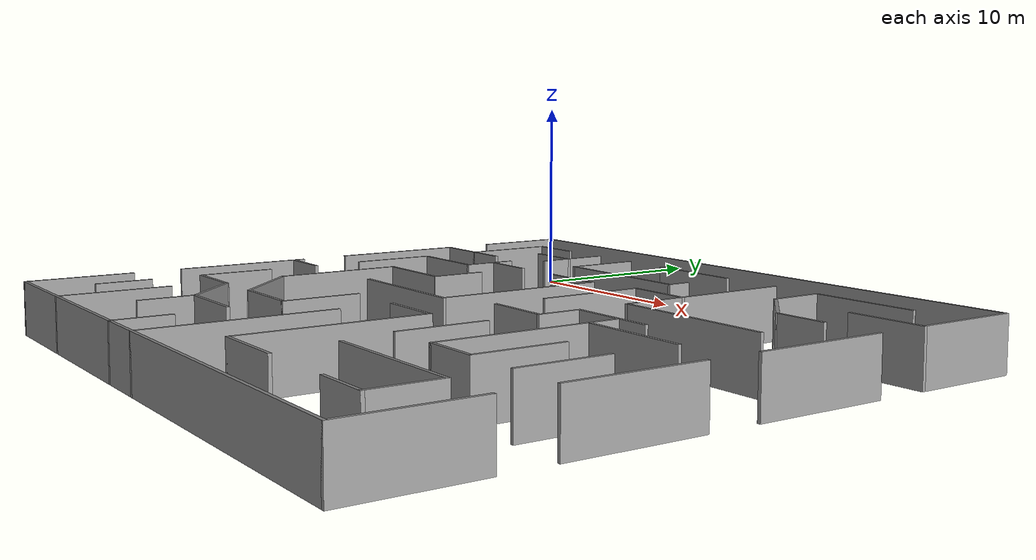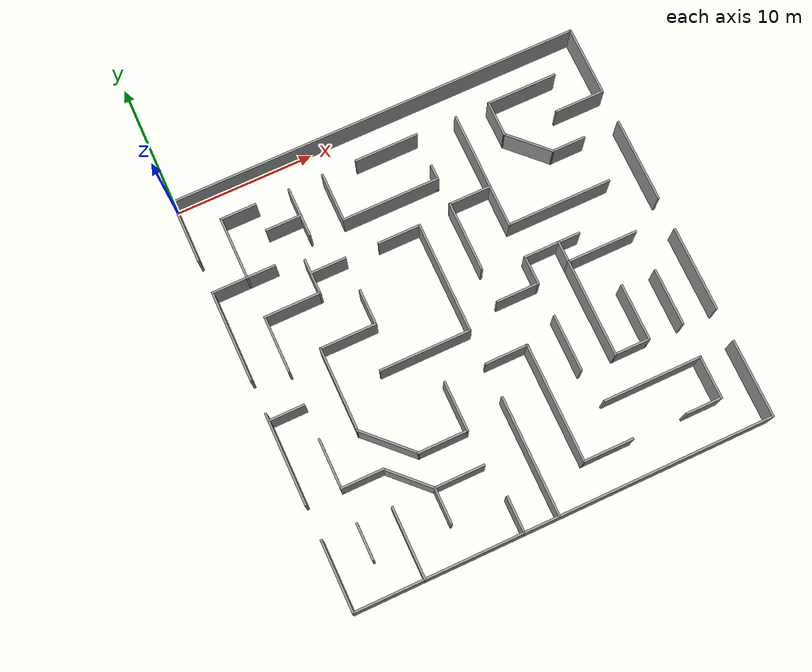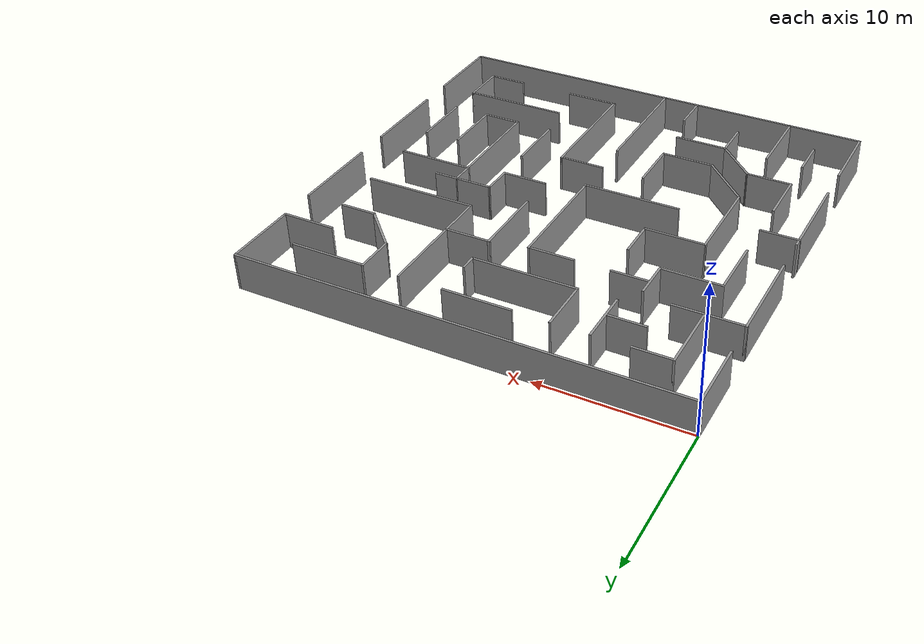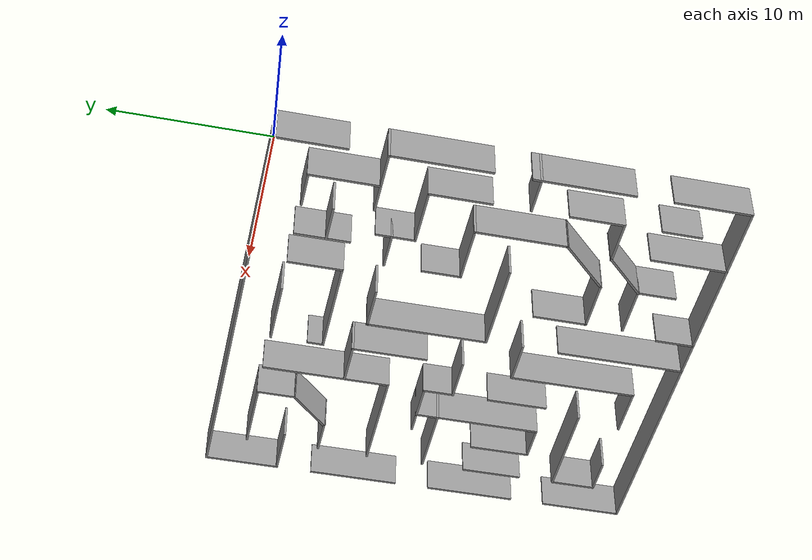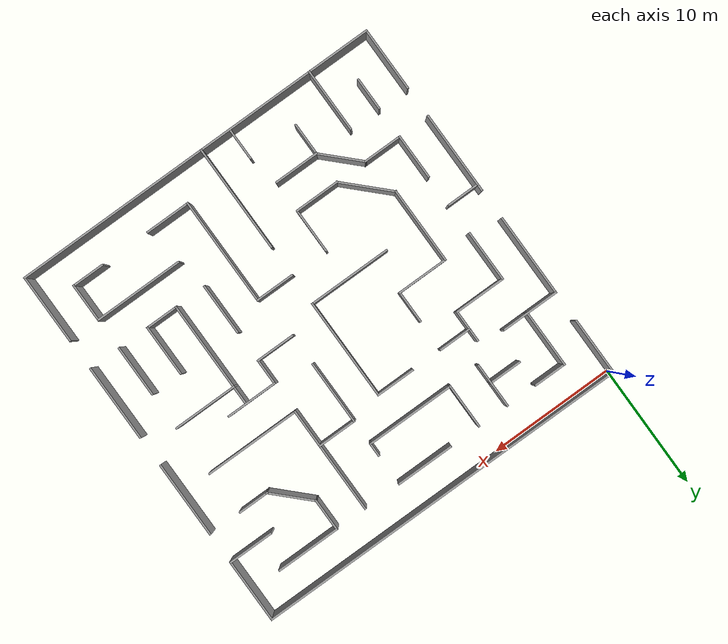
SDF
<?xml version='1.0'?>
<sdf version='1.6'>
  <model name='Untitled'>
    <pose frame=''>15 -15 0 0 -0 0</pose>
    <link name='Wall_101'>
      <collision name='Wall_101_Collision'>
        <geometry>
          <box>
            <size>2.65 0.15 2.5</size>
          </box>
        </geometry>
        <pose frame=''>0 0 1.25 0 -0 0</pose>
      </collision>
      <visual name='Wall_101_Visual'>
        <pose frame=''>0 0 1.25 0 -0 0</pose>
        <geometry>
          <box>
            <size>2.65 0.15 2.5</size>
          </box>
        </geometry>
        <material>
          <script>
            <uri>file://media/materials/scripts/gazebo.material</uri>
            <name>Gazebo/Grey</name>
          </script>
          <ambient>1 1 1 1</ambient>
        </material>
        <meta>
          <layer>0</layer>
        </meta>
      </visual>
      <pose frame=''>8.75 -7 0 0 -0 0</pose>
    </link>
    <link name='Wall_103'>
      <collision name='Wall_103_Collision'>
        <geometry>
          <box>
            <size>4.15 0.15 2.5</size>
          </box>
        </geometry>
        <pose frame=''>0 0 1.25 0 -0 0</pose>
      </collision>
      <visual name='Wall_103_Visual'>
        <pose frame=''>0 0 1.25 0 -0 0</pose>
        <geometry>
          <box>
            <size>4.15 0.15 2.5</size>
          </box>
        </geometry>
        <material>
          <script>
            <uri>file://media/materials/scripts/gazebo.material</uri>
            <name>Gazebo/Grey</name>
          </script>
          <ambient>1 1 1 1</ambient>
        </material>
        <meta>
          <layer>0</layer>
        </meta>
      </visual>
      <pose frame=''>10 -5 0 0 -0 1.5708</pose>
    </link>
    <link name='Wall_105'>
      <collision name='Wall_105_Collision'>
        <geometry>
          <box>
            <size>4.15 0.15 2.5</size>
          </box>
        </geometry>
        <pose frame=''>0 0 1.25 0 -0 0</pose>
      </collision>
      <visual name='Wall_105_Visual'>
        <pose frame=''>0 0 1.25 0 -0 0</pose>
        <geometry>
          <box>
            <size>4.15 0.15 2.5</size>
          </box>
        </geometry>
        <material>
          <script>
            <uri>file://media/materials/scripts/gazebo.material</uri>
            <name>Gazebo/Grey</name>
          </script>
          <ambient>1 1 1 1</ambient>
        </material>
        <meta>
          <layer>0</layer>
        </meta>
      </visual>
      <pose frame=''>12.5 -5 0 0 -0 -1.5708</pose>
    </link>
    <link name='Wall_107'>
      <collision name='Wall_107_Collision'>
        <geometry>
          <box>
            <size>7.15 0.15 2.5</size>
          </box>
        </geometry>
        <pose frame=''>0 0 1.25 0 -0 0</pose>
      </collision>
      <visual name='Wall_107_Visual'>
        <pose frame=''>0 0 1.25 0 -0 0</pose>
        <geometry>
          <box>
            <size>7.15 0.15 2.5</size>
          </box>
        </geometry>
        <material>
          <script>
            <uri>file://media/materials/scripts/gazebo.material</uri>
            <name>Gazebo/Grey</name>
          </script>
          <ambient>1 1 1 1</ambient>
        </material>
        <meta>
          <layer>0</layer>
        </meta>
      </visual>
      <pose frame=''>9 -9.5 0 0 -0 0</pose>
    </link>
    <link name='Wall_111'>
      <collision name='Wall_111_Collision'>
        <geometry>
          <box>
            <size>5.15 0.15 2.5</size>
          </box>
        </geometry>
        <pose frame=''>0 0 1.25 0 -0 0</pose>
      </collision>
      <visual name='Wall_111_Visual'>
        <pose frame=''>0 0 1.25 0 -0 0</pose>
        <geometry>
          <box>
            <size>5.15 0.15 2.5</size>
          </box>
        </geometry>
        <material>
          <script>
            <uri>file://media/materials/scripts/gazebo.material</uri>
            <name>Gazebo/Grey</name>
          </script>
          <ambient>1 1 1 1</ambient>
        </material>
        <meta>
          <layer>0</layer>
        </meta>
      </visual>
      <pose frame=''>10 0 0 0 -0 0</pose>
    </link>
    <link name='Wall_113'>
      <collision name='Wall_113_Collision'>
        <geometry>
          <box>
            <size>5.15 0.15 2.5</size>
          </box>
        </geometry>
        <pose frame=''>0 0 1.25 0 -0 0</pose>
      </collision>
      <visual name='Wall_113_Visual'>
        <pose frame=''>0 0 1.25 0 -0 0</pose>
        <geometry>
          <box>
            <size>5.15 0.15 2.5</size>
          </box>
        </geometry>
        <material>
          <script>
            <uri>file://media/materials/scripts/gazebo.material</uri>
            <name>Gazebo/Grey</name>
          </script>
          <ambient>1 1 1 1</ambient>
        </material>
        <meta>
          <layer>0</layer>
        </meta>
      </visual>
      <pose frame=''>10 12.5 0 0 -0 0</pose>
    </link>
    <link name='Wall_115'>
      <collision name='Wall_115_Collision'>
        <geometry>
          <box>
            <size>3.65 0.15 2.5</size>
          </box>
        </geometry>
        <pose frame=''>0 0 1.25 0 -0 0</pose>
      </collision>
      <visual name='Wall_115_Visual'>
        <pose frame=''>0 0 1.25 0 -0 0</pose>
        <geometry>
          <box>
            <size>3.65 0.15 2.5</size>
          </box>
        </geometry>
        <material>
          <script>
            <uri>file://media/materials/scripts/gazebo.material</uri>
            <name>Gazebo/Grey</name>
          </script>
          <ambient>1 1 1 1</ambient>
        </material>
        <meta>
          <layer>0</layer>
        </meta>
      </visual>
      <pose frame=''>13.25 10 0 0 -0 3.14159</pose>
    </link>
    <link name='Wall_117'>
      <collision name='Wall_117_Collision'>
        <geometry>
          <box>
            <size>2.65 0.15 2.5</size>
          </box>
        </geometry>
        <pose frame=''>0 0 1.25 0 -0 0</pose>
      </collision>
      <visual name='Wall_117_Visual'>
        <pose frame=''>0 0 1.25 0 -0 0</pose>
        <geometry>
          <box>
            <size>2.65 0.15 2.5</size>
          </box>
        </geometry>
        <material>
          <script>
            <uri>file://media/materials/scripts/gazebo.material</uri>
            <name>Gazebo/Grey</name>
          </script>
          <ambient>1 1 1 1</ambient>
        </material>
        <meta>
          <layer>0</layer>
        </meta>
      </visual>
      <pose frame=''>-13.75 -1.5 0 0 -0 0</pose>
    </link>
    <link name='Wall_119'>
      <collision name='Wall_119_Collision'>
        <geometry>
          <box>
            <size>6.15 0.15 2.5</size>
          </box>
        </geometry>
        <pose frame=''>0 0 1.25 0 -0 0</pose>
      </collision>
      <visual name='Wall_119_Visual'>
        <pose frame=''>0 0 1.25 0 -0 0</pose>
        <geometry>
          <box>
            <size>6.15 0.15 2.5</size>
          </box>
        </geometry>
        <material>
          <script>
            <uri>file://media/materials/scripts/gazebo.material</uri>
            <name>Gazebo/Grey</name>
          </script>
          <ambient>1 1 1 1</ambient>
        </material>
        <meta>
          <layer>0</layer>
        </meta>
      </visual>
      <pose frame=''>-10 -1.5 0 0 -0 -1.5708</pose>
    </link>
    <link name='Wall_121'>
      <collision name='Wall_121_Collision'>
        <geometry>
          <box>
            <size>4.15 0.15 2.5</size>
          </box>
        </geometry>
        <pose frame=''>0 0 1.25 0 -0 0</pose>
      </collision>
      <visual name='Wall_121_Visual'>
        <pose frame=''>0 0 1.25 0 -0 0</pose>
        <geometry>
          <box>
            <size>4.15 0.15 2.5</size>
          </box>
        </geometry>
        <material>
          <script>
            <uri>file://media/materials/scripts/gazebo.material</uri>
            <name>Gazebo/Grey</name>
          </script>
          <ambient>1 1 1 1</ambient>
        </material>
        <meta>
          <layer>0</layer>
        </meta>
      </visual>
      <pose frame=''>-8 1.5 0 0 -0 0</pose>
    </link>
    <link name='Wall_123'>
      <collision name='Wall_123_Collision'>
        <geometry>
          <box>
            <size>2.65 0.15 2.5</size>
          </box>
        </geometry>
        <pose frame=''>0 0 1.25 0 -0 0</pose>
      </collision>
      <visual name='Wall_123_Visual'>
        <pose frame=''>0 0 1.25 0 -0 0</pose>
        <geometry>
          <box>
            <size>2.65 0.15 2.5</size>
          </box>
        </geometry>
        <material>
          <script>
            <uri>file://media/materials/scripts/gazebo.material</uri>
            <name>Gazebo/Grey</name>
          </script>
          <ambient>1 1 1 1</ambient>
        </material>
        <meta>
          <layer>0</layer>
        </meta>
      </visual>
      <pose frame=''>-6 2.75 0 0 -0 1.5708</pose>
    </link>
    <link name='Wall_125'>
      <collision name='Wall_125_Collision'>
        <geometry>
          <box>
            <size>4.39264 0.15 2.5</size>
          </box>
        </geometry>
        <pose frame=''>0 0 1.25 0 -0 0</pose>
      </collision>
      <visual name='Wall_125_Visual'>
        <pose frame=''>0 0 1.25 0 -0 0</pose>
        <geometry>
          <box>
            <size>4.39264 0.15 2.5</size>
          </box>
        </geometry>
        <material>
          <script>
            <uri>file://media/materials/scripts/gazebo.material</uri>
            <name>Gazebo/Grey</name>
          </script>
          <ambient>1 1 1 1</ambient>
        </material>
        <meta>
          <layer>0</layer>
        </meta>
      </visual>
      <pose frame=''>-8.5 -6 0 0 -0 -0.785398</pose>
    </link>
    <link name='Wall_127'>
      <collision name='Wall_127_Collision'>
        <geometry>
          <box>
            <size>3.65 0.15 2.5</size>
          </box>
        </geometry>
        <pose frame=''>0 0 1.25 0 -0 0</pose>
      </collision>
      <visual name='Wall_127_Visual'>
        <pose frame=''>0 0 1.25 0 -0 0</pose>
        <geometry>
          <box>
            <size>3.65 0.15 2.5</size>
          </box>
        </geometry>
        <material>
          <script>
            <uri>file://media/materials/scripts/gazebo.material</uri>
            <name>Gazebo/Grey</name>
          </script>
          <ambient>1 1 1 1</ambient>
        </material>
        <meta>
          <layer>0</layer>
        </meta>
      </visual>
      <pose frame=''>-5.25 -7.5 0 0 -0 0</pose>
    </link>
    <link name='Wall_128'>
      <collision name='Wall_128_Collision'>
        <geometry>
          <box>
            <size>3.65 0.15 2.5</size>
          </box>
        </geometry>
        <pose frame=''>0 0 1.25 0 -0 0</pose>
      </collision>
      <visual name='Wall_128_Visual'>
        <pose frame=''>0 0 1.25 0 -0 0</pose>
        <geometry>
          <box>
            <size>3.65 0.15 2.5</size>
          </box>
        </geometry>
        <material>
          <script>
            <uri>file://media/materials/scripts/gazebo.material</uri>
            <name>Gazebo/Grey</name>
          </script>
          <ambient>1 1 1 1</ambient>
        </material>
        <meta>
          <layer>0</layer>
        </meta>
      </visual>
      <pose frame=''>-3.5 -5.75 0 0 -0 1.5708</pose>
    </link>
    <link name='Wall_132'>
      <collision name='Wall_132_Collision'>
        <geometry>
          <box>
            <size>3.65 0.15 2.5</size>
          </box>
        </geometry>
        <pose frame=''>0 0 1.25 0 -0 0</pose>
      </collision>
      <visual name='Wall_132_Visual'>
        <pose frame=''>0 0 1.25 0 -0 0</pose>
        <geometry>
          <box>
            <size>3.65 0.15 2.5</size>
          </box>
        </geometry>
        <material>
          <script>
            <uri>file://media/materials/scripts/gazebo.material</uri>
            <name>Gazebo/Grey</name>
          </script>
          <ambient>1 1 1 1</ambient>
        </material>
        <meta>
          <layer>0</layer>
        </meta>
      </visual>
      <pose frame=''>-12.5 -5.75 0 0 -0 -1.5708</pose>
    </link>
    <link name='Wall_134'>
      <collision name='Wall_134_Collision'>
        <geometry>
          <box>
            <size>3.15 0.15 2.5</size>
          </box>
        </geometry>
        <pose frame=''>0 0 1.25 0 -0 0</pose>
      </collision>
      <visual name='Wall_134_Visual'>
        <pose frame=''>0 0 1.25 0 -0 0</pose>
        <geometry>
          <box>
            <size>3.15 0.15 2.5</size>
          </box>
        </geometry>
        <material>
          <script>
            <uri>file://media/materials/scripts/gazebo.material</uri>
            <name>Gazebo/Grey</name>
          </script>
          <ambient>1 1 1 1</ambient>
        </material>
        <meta>
          <layer>0</layer>
        </meta>
      </visual>
      <pose frame=''>-11 -7.5 0 0 -0 0</pose>
    </link>
    <link name='Wall_135'>
      <collision name='Wall_135_Collision'>
        <geometry>
          <box>
            <size>3.68553 0.15 2.5</size>
          </box>
        </geometry>
        <pose frame=''>0 0 1.25 0 -0 0</pose>
      </collision>
      <visual name='Wall_135_Visual'>
        <pose frame=''>0 0 1.25 0 -0 0</pose>
        <geometry>
          <box>
            <size>3.68553 0.15 2.5</size>
          </box>
        </geometry>
        <material>
          <script>
            <uri>file://media/materials/scripts/gazebo.material</uri>
            <name>Gazebo/Grey</name>
          </script>
          <ambient>1 1 1 1</ambient>
        </material>
        <meta>
          <layer>0</layer>
        </meta>
      </visual>
      <pose frame=''>-8.25 -8.75 0 0 -0 -0.785398</pose>
    </link>
    <link name='Wall_136'>
      <collision name='Wall_136_Collision'>
        <geometry>
          <box>
            <size>3.65 0.15 2.5</size>
          </box>
        </geometry>
        <pose frame=''>0 0 1.25 0 -0 0</pose>
      </collision>
      <visual name='Wall_136_Visual'>
        <pose frame=''>0 0 1.25 0 -0 0</pose>
        <geometry>
          <box>
            <size>3.65 0.15 2.5</size>
          </box>
        </geometry>
        <material>
          <script>
            <uri>file://media/materials/scripts/gazebo.material</uri>
            <name>Gazebo/Grey</name>
          </script>
          <ambient>1 1 1 1</ambient>
        </material>
        <meta>
          <layer>0</layer>
        </meta>
      </visual>
      <pose frame=''>-5.25 -10 0 0 -0 0</pose>
    </link>
    <link name='Wall_138'>
      <collision name='Wall_138_Collision'>
        <geometry>
          <box>
            <size>2.65 0.15 2.5</size>
          </box>
        </geometry>
        <pose frame=''>0 0 1.25 0 -0 0</pose>
      </collision>
      <visual name='Wall_138_Visual'>
        <pose frame=''>0 0 1.25 0 -0 0</pose>
        <geometry>
          <box>
            <size>2.65 0.15 2.5</size>
          </box>
        </geometry>
        <material>
          <script>
            <uri>file://media/materials/scripts/gazebo.material</uri>
            <name>Gazebo/Grey</name>
          </script>
          <ambient>1 1 1 1</ambient>
        </material>
        <meta>
          <layer>0</layer>
        </meta>
      </visual>
      <pose frame=''>-7 -11.25 0 0 -0 -1.5708</pose>
    </link>
    <link name='Wall_140'>
      <collision name='Wall_140_Collision'>
        <geometry>
          <box>
            <size>2.65 0.15 2.5</size>
          </box>
        </geometry>
        <pose frame=''>0 0 1.25 0 -0 0</pose>
      </collision>
      <visual name='Wall_140_Visual'>
        <pose frame=''>0 0 1.25 0 -0 0</pose>
        <geometry>
          <box>
            <size>2.65 0.15 2.5</size>
          </box>
        </geometry>
        <material>
          <script>
            <uri>file://media/materials/scripts/gazebo.material</uri>
            <name>Gazebo/Grey</name>
          </script>
          <ambient>1 1 1 1</ambient>
        </material>
        <meta>
          <layer>0</layer>
        </meta>
      </visual>
      <pose frame=''>-12.5 -11.25 0 0 -0 1.5708</pose>
    </link>
    <link name='Wall_142'>
      <collision name='Wall_142_Collision'>
        <geometry>
          <box>
            <size>5.15 0.15 2.5</size>
          </box>
        </geometry>
        <pose frame=''>0 0 1.25 0 -0 0</pose>
      </collision>
      <visual name='Wall_142_Visual'>
        <pose frame=''>0 0 1.25 0 -0 0</pose>
        <geometry>
          <box>
            <size>5.15 0.15 2.5</size>
          </box>
        </geometry>
        <material>
          <script>
            <uri>file://media/materials/scripts/gazebo.material</uri>
            <name>Gazebo/Grey</name>
          </script>
          <ambient>1 1 1 1</ambient>
        </material>
        <meta>
          <layer>0</layer>
        </meta>
      </visual>
      <pose frame=''>-10 -12.5 0 0 -0 -1.5708</pose>
    </link>
    <link name='Wall_144'>
      <collision name='Wall_144_Collision'>
        <geometry>
          <box>
            <size>2.65 0.15 2.5</size>
          </box>
        </geometry>
        <pose frame=''>0 0 1.25 0 -0 0</pose>
      </collision>
      <visual name='Wall_144_Visual'>
        <pose frame=''>0 0 1.25 0 -0 0</pose>
        <geometry>
          <box>
            <size>2.65 0.15 2.5</size>
          </box>
        </geometry>
        <material>
          <script>
            <uri>file://media/materials/scripts/gazebo.material</uri>
            <name>Gazebo/Grey</name>
          </script>
          <ambient>1 1 1 1</ambient>
        </material>
        <meta>
          <layer>0</layer>
        </meta>
      </visual>
      <pose frame=''>-3 -13.75 0 0 -0 1.5708</pose>
    </link>
    <link name='Wall_146'>
      <collision name='Wall_146_Collision'>
        <geometry>
          <box>
            <size>3.15 0.15 2.5</size>
          </box>
        </geometry>
        <pose frame=''>0 0 1.25 0 -0 0</pose>
      </collision>
      <visual name='Wall_146_Visual'>
        <pose frame=''>0 0 1.25 0 -0 0</pose>
        <geometry>
          <box>
            <size>3.15 0.15 2.5</size>
          </box>
        </geometry>
        <material>
          <script>
            <uri>file://media/materials/scripts/gazebo.material</uri>
            <name>Gazebo/Grey</name>
          </script>
          <ambient>1 1 1 1</ambient>
        </material>
        <meta>
          <layer>0</layer>
        </meta>
      </visual>
      <pose frame=''>1 -4 0 0 -0 0</pose>
    </link>
    <link name='Wall_148'>
      <collision name='Wall_148_Collision'>
        <geometry>
          <box>
            <size>4.15 0.15 2.5</size>
          </box>
        </geometry>
        <pose frame=''>0 0 1.25 0 -0 0</pose>
      </collision>
      <visual name='Wall_148_Visual'>
        <pose frame=''>0 0 1.25 0 -0 0</pose>
        <geometry>
          <box>
            <size>4.15 0.15 2.5</size>
          </box>
        </geometry>
        <material>
          <script>
            <uri>file://media/materials/scripts/gazebo.material</uri>
            <name>Gazebo/Grey</name>
          </script>
          <ambient>1 1 1 1</ambient>
        </material>
        <meta>
          <layer>0</layer>
        </meta>
      </visual>
      <pose frame=''>5 -5 0 0 -0 -1.5708</pose>
    </link>
    <link name='Wall_150'>
      <collision name='Wall_150_Collision'>
        <geometry>
          <box>
            <size>8.65 0.15 2.5</size>
          </box>
        </geometry>
        <pose frame=''>0 0 1.25 0 -0 0</pose>
      </collision>
      <visual name='Wall_150_Visual'>
        <pose frame=''>0 0 1.25 0 -0 0</pose>
        <geometry>
          <box>
            <size>8.65 0.15 2.5</size>
          </box>
        </geometry>
        <material>
          <script>
            <uri>file://media/materials/scripts/gazebo.material</uri>
            <name>Gazebo/Grey</name>
          </script>
          <ambient>1 1 1 1</ambient>
        </material>
        <meta>
          <layer>0</layer>
        </meta>
      </visual>
      <pose frame=''>2.5 -8.25 0 0 -0 -1.5708</pose>
    </link>
    <link name='Wall_151'>
      <collision name='Wall_151_Collision'>
        <geometry>
          <box>
            <size>3.65 0.15 2.5</size>
          </box>
        </geometry>
        <pose frame=''>0 0 1.25 0 -0 0</pose>
      </collision>
      <visual name='Wall_151_Visual'>
        <pose frame=''>0 0 1.25 0 -0 0</pose>
        <geometry>
          <box>
            <size>3.65 0.15 2.5</size>
          </box>
        </geometry>
        <material>
          <script>
            <uri>file://media/materials/scripts/gazebo.material</uri>
            <name>Gazebo/Grey</name>
          </script>
          <ambient>1 1 1 1</ambient>
        </material>
        <meta>
          <layer>0</layer>
        </meta>
      </visual>
      <pose frame=''>4.25 -12.5 0 0 -0 0</pose>
    </link>
    <link name='Wall_153'>
      <collision name='Wall_153_Collision'>
        <geometry>
          <box>
            <size>3.65 0.15 2.5</size>
          </box>
        </geometry>
        <pose frame=''>0 0 1.25 0 -0 0</pose>
      </collision>
      <visual name='Wall_153_Visual'>
        <pose frame=''>0 0 1.25 0 -0 0</pose>
        <geometry>
          <box>
            <size>3.65 0.15 2.5</size>
          </box>
        </geometry>
        <material>
          <script>
            <uri>file://media/materials/scripts/gazebo.material</uri>
            <name>Gazebo/Grey</name>
          </script>
          <ambient>1 1 1 1</ambient>
        </material>
        <meta>
          <layer>0</layer>
        </meta>
      </visual>
      <pose frame=''>-7.5 10.75 0 0 -0 -1.5708</pose>
    </link>
    <link name='Wall_155'>
      <collision name='Wall_155_Collision'>
        <geometry>
          <box>
            <size>3.65 0.15 2.5</size>
          </box>
        </geometry>
        <pose frame=''>0 0 1.25 0 -0 0</pose>
      </collision>
      <visual name='Wall_155_Visual'>
        <pose frame=''>0 0 1.25 0 -0 0</pose>
        <geometry>
          <box>
            <size>3.65 0.15 2.5</size>
          </box>
        </geometry>
        <material>
          <script>
            <uri>file://media/materials/scripts/gazebo.material</uri>
            <name>Gazebo/Grey</name>
          </script>
          <ambient>1 1 1 1</ambient>
        </material>
        <meta>
          <layer>0</layer>
        </meta>
      </visual>
      <pose frame=''>-5 10.75 0 0 -0 -1.5708</pose>
    </link>
    <link name='Wall_157'>
      <collision name='Wall_157_Collision'>
        <geometry>
          <box>
            <size>2.65 0.15 2.5</size>
          </box>
        </geometry>
        <pose frame=''>0 0 1.25 0 -0 0</pose>
      </collision>
      <visual name='Wall_157_Visual'>
        <pose frame=''>0 0 1.25 0 -0 0</pose>
        <geometry>
          <box>
            <size>2.65 0.15 2.5</size>
          </box>
        </geometry>
        <material>
          <script>
            <uri>file://media/materials/scripts/gazebo.material</uri>
            <name>Gazebo/Grey</name>
          </script>
          <ambient>1 1 1 1</ambient>
        </material>
        <meta>
          <layer>0</layer>
        </meta>
      </visual>
      <pose frame=''>-7.25 6.5 0 0 -0 0</pose>
    </link>
    <link name='Wall_159'>
      <collision name='Wall_159_Collision'>
        <geometry>
          <box>
            <size>3.15 0.15 2.5</size>
          </box>
        </geometry>
        <pose frame=''>0 0 1.25 0 -0 0</pose>
      </collision>
      <visual name='Wall_159_Visual'>
        <pose frame=''>0 0 1.25 0 -0 0</pose>
        <geometry>
          <box>
            <size>3.15 0.15 2.5</size>
          </box>
        </geometry>
        <material>
          <script>
            <uri>file://media/materials/scripts/gazebo.material</uri>
            <name>Gazebo/Grey</name>
          </script>
          <ambient>1 1 1 1</ambient>
        </material>
        <meta>
          <layer>0</layer>
        </meta>
      </visual>
      <pose frame=''>-2 6.5 0 0 -0 3.14159</pose>
    </link>
    <link name='Wall_161'>
      <collision name='Wall_161_Collision'>
        <geometry>
          <box>
            <size>7.15 0.15 2.5</size>
          </box>
        </geometry>
        <pose frame=''>0 0 1.25 0 -0 0</pose>
      </collision>
      <visual name='Wall_161_Visual'>
        <pose frame=''>0 0 1.25 0 -0 0</pose>
        <geometry>
          <box>
            <size>7.15 0.15 2.5</size>
          </box>
        </geometry>
        <material>
          <script>
            <uri>file://media/materials/scripts/gazebo.material</uri>
            <name>Gazebo/Grey</name>
          </script>
          <ambient>1 1 1 1</ambient>
        </material>
        <meta>
          <layer>0</layer>
        </meta>
      </visual>
      <pose frame=''>-1.5 9 0 0 -0 0</pose>
    </link>
    <link name='Wall_163'>
      <collision name='Wall_163_Collision'>
        <geometry>
          <box>
            <size>1.15 0.15 2.5</size>
          </box>
        </geometry>
        <pose frame=''>0 0 1.25 0 -0 0</pose>
      </collision>
      <visual name='Wall_163_Visual'>
        <pose frame=''>0 0 1.25 0 -0 0</pose>
        <geometry>
          <box>
            <size>1.15 0.15 2.5</size>
          </box>
        </geometry>
        <material>
          <script>
            <uri>file://media/materials/scripts/gazebo.material</uri>
            <name>Gazebo/Grey</name>
          </script>
          <ambient>1 1 1 1</ambient>
        </material>
        <meta>
          <layer>0</layer>
        </meta>
      </visual>
      <pose frame=''>2 9.5 0 0 -0 1.5708</pose>
    </link>
    <link name='Wall_165'>
      <collision name='Wall_165_Collision'>
        <geometry>
          <box>
            <size>5.15 0.15 2.5</size>
          </box>
        </geometry>
        <pose frame=''>0 0 1.25 0 -0 0</pose>
      </collision>
      <visual name='Wall_165_Visual'>
        <pose frame=''>0 0 1.25 0 -0 0</pose>
        <geometry>
          <box>
            <size>5.15 0.15 2.5</size>
          </box>
        </geometry>
        <material>
          <script>
            <uri>file://media/materials/scripts/gazebo.material</uri>
            <name>Gazebo/Grey</name>
          </script>
          <ambient>1 1 1 1</ambient>
        </material>
        <meta>
          <layer>0</layer>
        </meta>
      </visual>
      <pose frame=''>2 4.5 0 0 -0 -1.5708</pose>
    </link>
    <link name='Wall_167'>
      <collision name='Wall_167_Collision'>
        <geometry>
          <box>
            <size>2.65 0.15 2.5</size>
          </box>
        </geometry>
        <pose frame=''>0 0 1.25 0 -0 0</pose>
      </collision>
      <visual name='Wall_167_Visual'>
        <pose frame=''>0 0 1.25 0 -0 0</pose>
        <geometry>
          <box>
            <size>2.65 0.15 2.5</size>
          </box>
        </geometry>
        <material>
          <script>
            <uri>file://media/materials/scripts/gazebo.material</uri>
            <name>Gazebo/Grey</name>
          </script>
          <ambient>1 1 1 1</ambient>
        </material>
        <meta>
          <layer>0</layer>
        </meta>
      </visual>
      <pose frame=''>7.5 11.25 0 0 -0 1.5708</pose>
    </link>
    <link name='Wall_169'>
      <collision name='Wall_169_Collision'>
        <geometry>
          <box>
            <size>8.65 0.15 2.5</size>
          </box>
        </geometry>
        <pose frame=''>0 0 1.25 0 -0 0</pose>
      </collision>
      <visual name='Wall_169_Visual'>
        <pose frame=''>0 0 1.25 0 -0 0</pose>
        <geometry>
          <box>
            <size>8.65 0.15 2.5</size>
          </box>
        </geometry>
        <material>
          <script>
            <uri>file://media/materials/scripts/gazebo.material</uri>
            <name>Gazebo/Grey</name>
          </script>
          <ambient>1 1 1 1</ambient>
        </material>
        <meta>
          <layer>0</layer>
        </meta>
      </visual>
      <pose frame=''>-0.5 -10.75 0 0 -0 -1.5708</pose>
    </link>
    <link name='Wall_171'>
      <collision name='Wall_171_Collision'>
        <geometry>
          <box>
            <size>3.15 0.15 2.5</size>
          </box>
        </geometry>
        <pose frame=''>0 0 1.25 0 -0 0</pose>
      </collision>
      <visual name='Wall_171_Visual'>
        <pose frame=''>0 0 1.25 0 -0 0</pose>
        <geometry>
          <box>
            <size>3.15 0.15 2.5</size>
          </box>
        </geometry>
        <material>
          <script>
            <uri>file://media/materials/scripts/gazebo.material</uri>
            <name>Gazebo/Grey</name>
          </script>
          <ambient>1 1 1 1</ambient>
        </material>
        <meta>
          <layer>0</layer>
        </meta>
      </visual>
      <pose frame=''>12.5 -11 0 0 -0 -1.5708</pose>
    </link>
    <link name='Wall_172'>
      <collision name='Wall_172_Collision'>
        <geometry>
          <box>
            <size>2.65 0.15 2.5</size>
          </box>
        </geometry>
        <pose frame=''>0 0 1.25 0 -0 0</pose>
      </collision>
      <visual name='Wall_172_Visual'>
        <pose frame=''>0 0 1.25 0 -0 0</pose>
        <geometry>
          <box>
            <size>2.65 0.15 2.5</size>
          </box>
        </geometry>
        <material>
          <script>
            <uri>file://media/materials/scripts/gazebo.material</uri>
            <name>Gazebo/Grey</name>
          </script>
          <ambient>1 1 1 1</ambient>
        </material>
        <meta>
          <layer>0</layer>
        </meta>
      </visual>
      <pose frame=''>11.25 -12.5 0 0 -0 3.14159</pose>
    </link>
    <link name='Wall_31'>
      <collision name='Wall_31_Collision'>
        <geometry>
          <box>
            <size>30.15 0.15 2.5</size>
          </box>
        </geometry>
        <pose frame=''>0 0 1.25 0 -0 0</pose>
      </collision>
      <visual name='Wall_31_Visual'>
        <pose frame=''>0 0 1.25 0 -0 0</pose>
        <geometry>
          <box>
            <size>30.15 0.15 2.5</size>
          </box>
        </geometry>
        <material>
          <script>
            <uri>file://media/materials/scripts/gazebo.material</uri>
            <name>Gazebo/Grey</name>
          </script>
          <ambient>1 1 1 1</ambient>
        </material>
        <meta>
          <layer>0</layer>
        </meta>
      </visual>
      <pose frame=''>-0 15 0 0 -0 0</pose>
    </link>
    <link name='Wall_35'>
      <collision name='Wall_35_Collision'>
        <geometry>
          <box>
            <size>30.15 0.15 2.5</size>
          </box>
        </geometry>
        <pose frame=''>0 0 1.25 0 -0 0</pose>
      </collision>
      <visual name='Wall_35_Visual'>
        <pose frame=''>0 0 1.25 0 -0 0</pose>
        <geometry>
          <box>
            <size>30.15 0.15 2.5</size>
          </box>
        </geometry>
        <material>
          <script>
            <uri>file://media/materials/scripts/gazebo.material</uri>
            <name>Gazebo/Grey</name>
          </script>
          <ambient>1 1 1 1</ambient>
        </material>
        <meta>
          <layer>0</layer>
        </meta>
      </visual>
      <pose frame=''>-0 -15 0 0 -0 0</pose>
    </link>
    <link name='Wall_37'>
      <collision name='Wall_37_Collision'>
        <geometry>
          <box>
            <size>4.65 0.15 2.5</size>
          </box>
        </geometry>
        <pose frame=''>0 0 1.25 0 -0 0</pose>
      </collision>
      <visual name='Wall_37_Visual'>
        <pose frame=''>0 0 1.25 0 -0 0</pose>
        <geometry>
          <box>
            <size>4.65 0.15 2.5</size>
          </box>
        </geometry>
        <material>
          <script>
            <uri>file://media/materials/scripts/gazebo.material</uri>
            <name>Gazebo/Grey</name>
          </script>
          <ambient>1 1 1 1</ambient>
        </material>
        <meta>
          <layer>0</layer>
        </meta>
      </visual>
      <pose frame=''>-12.75 8 0 0 -0 0</pose>
    </link>
    <link name='Wall_39'>
      <collision name='Wall_39_Collision'>
        <geometry>
          <box>
            <size>4.65 0.15 2.5</size>
          </box>
        </geometry>
        <pose frame=''>0 0 1.25 0 -0 0</pose>
      </collision>
      <visual name='Wall_39_Visual'>
        <pose frame=''>0 0 1.25 0 -0 0</pose>
        <geometry>
          <box>
            <size>4.65 0.15 2.5</size>
          </box>
        </geometry>
        <material>
          <script>
            <uri>file://media/materials/scripts/gazebo.material</uri>
            <name>Gazebo/Grey</name>
          </script>
          <ambient>1 1 1 1</ambient>
        </material>
        <meta>
          <layer>0</layer>
        </meta>
      </visual>
      <pose frame=''>-12.5 10.25 0 0 -0 1.5708</pose>
    </link>
    <link name='Wall_41'>
      <collision name='Wall_41_Collision'>
        <geometry>
          <box>
            <size>2.65 0.15 2.5</size>
          </box>
        </geometry>
        <pose frame=''>0 0 1.25 0 -0 0</pose>
      </collision>
      <visual name='Wall_41_Visual'>
        <pose frame=''>0 0 1.25 0 -0 0</pose>
        <geometry>
          <box>
            <size>2.65 0.15 2.5</size>
          </box>
        </geometry>
        <material>
          <script>
            <uri>file://media/materials/scripts/gazebo.material</uri>
            <name>Gazebo/Grey</name>
          </script>
          <ambient>1 1 1 1</ambient>
        </material>
        <meta>
          <layer>0</layer>
        </meta>
      </visual>
      <pose frame=''>-11.25 12.5 0 0 -0 0</pose>
    </link>
    <link name='Wall_43'>
      <collision name='Wall_43_Collision'>
        <geometry>
          <box>
            <size>2.65 0.15 2.5</size>
          </box>
        </geometry>
        <pose frame=''>0 0 1.25 0 -0 0</pose>
      </collision>
      <visual name='Wall_43_Visual'>
        <pose frame=''>0 0 1.25 0 -0 0</pose>
        <geometry>
          <box>
            <size>2.65 0.15 2.5</size>
          </box>
        </geometry>
        <material>
          <script>
            <uri>file://media/materials/scripts/gazebo.material</uri>
            <name>Gazebo/Grey</name>
          </script>
          <ambient>1 1 1 1</ambient>
        </material>
        <meta>
          <layer>0</layer>
        </meta>
      </visual>
      <pose frame=''>-8.75 10.5 0 0 -0 0</pose>
    </link>
    <link name='Wall_49'>
      <collision name='Wall_49_Collision'>
        <geometry>
          <box>
            <size>4.65 0.15 2.5</size>
          </box>
        </geometry>
        <pose frame=''>0 0 1.25 0 -0 0</pose>
      </collision>
      <visual name='Wall_49_Visual'>
        <pose frame=''>0 0 1.25 0 -0 0</pose>
        <geometry>
          <box>
            <size>4.65 0.15 2.5</size>
          </box>
        </geometry>
        <material>
          <script>
            <uri>file://media/materials/scripts/gazebo.material</uri>
            <name>Gazebo/Grey</name>
          </script>
          <ambient>1 1 1 1</ambient>
        </material>
        <meta>
          <layer>0</layer>
        </meta>
      </visual>
      <pose frame=''>-0.25 12.5 0 0 -0 3.14159</pose>
    </link>
    <link name='Wall_53'>
      <collision name='Wall_53_Collision'>
        <geometry>
          <box>
            <size>3.15 0.15 2.5</size>
          </box>
        </geometry>
        <pose frame=''>0 0 1.25 0 -0 0</pose>
      </collision>
      <visual name='Wall_53_Visual'>
        <pose frame=''>0 0 1.25 0 -0 0</pose>
        <geometry>
          <box>
            <size>3.15 0.15 2.5</size>
          </box>
        </geometry>
        <material>
          <script>
            <uri>file://media/materials/scripts/gazebo.material</uri>
            <name>Gazebo/Grey</name>
          </script>
          <ambient>1 1 1 1</ambient>
        </material>
        <meta>
          <layer>0</layer>
        </meta>
      </visual>
      <pose frame=''>3.5 7 0 0 -0 0</pose>
    </link>
    <link name='Wall_55'>
      <collision name='Wall_55_Collision'>
        <geometry>
          <box>
            <size>8.65 0.15 2.5</size>
          </box>
        </geometry>
        <pose frame=''>0 0 1.25 0 -0 0</pose>
      </collision>
      <visual name='Wall_55_Visual'>
        <pose frame=''>0 0 1.25 0 -0 0</pose>
        <geometry>
          <box>
            <size>8.65 0.15 2.5</size>
          </box>
        </geometry>
        <material>
          <script>
            <uri>file://media/materials/scripts/gazebo.material</uri>
            <name>Gazebo/Grey</name>
          </script>
          <ambient>1 1 1 1</ambient>
        </material>
        <meta>
          <layer>0</layer>
        </meta>
      </visual>
      <pose frame=''>5 8.25 0 0 -0 -1.5708</pose>
    </link>
    <link name='Wall_57'>
      <collision name='Wall_57_Collision'>
        <geometry>
          <box>
            <size>7.65 0.15 2.5</size>
          </box>
        </geometry>
        <pose frame=''>0 0 1.25 0 -0 0</pose>
      </collision>
      <visual name='Wall_57_Visual'>
        <pose frame=''>0 0 1.25 0 -0 0</pose>
        <geometry>
          <box>
            <size>7.65 0.15 2.5</size>
          </box>
        </geometry>
        <material>
          <script>
            <uri>file://media/materials/scripts/gazebo.material</uri>
            <name>Gazebo/Grey</name>
          </script>
          <ambient>1 1 1 1</ambient>
        </material>
        <meta>
          <layer>0</layer>
        </meta>
      </visual>
      <pose frame=''>8.75 4 0 0 -0 0</pose>
    </link>
    <link name='Wall_61'>
      <collision name='Wall_61_Collision'>
        <geometry>
          <box>
            <size>3.68553 0.15 2.5</size>
          </box>
        </geometry>
        <pose frame=''>0 0 1.25 0 -0 0</pose>
      </collision>
      <visual name='Wall_61_Visual'>
        <pose frame=''>0 0 1.25 0 -0 0</pose>
        <geometry>
          <box>
            <size>3.68553 0.15 2.5</size>
          </box>
        </geometry>
        <material>
          <script>
            <uri>file://media/materials/scripts/gazebo.material</uri>
            <name>Gazebo/Grey</name>
          </script>
          <ambient>1 1 1 1</ambient>
        </material>
        <meta>
          <layer>0</layer>
        </meta>
      </visual>
      <pose frame=''>8.75 8.75 0 0 -0 -0.785398</pose>
    </link>
    <link name='Wall_63'>
      <collision name='Wall_63_Collision'>
        <geometry>
          <box>
            <size>2.5 0.15 2.5</size>
          </box>
        </geometry>
        <pose frame=''>0 0 1.25 0 -0 0</pose>
      </collision>
      <visual name='Wall_63_Visual'>
        <pose frame=''>0 0 1.25 0 -0 0</pose>
        <geometry>
          <box>
            <size>2.5 0.15 2.5</size>
          </box>
        </geometry>
        <material>
          <script>
            <uri>file://media/materials/scripts/gazebo.material</uri>
            <name>Gazebo/Grey</name>
          </script>
          <ambient>1 1 1 1</ambient>
        </material>
        <meta>
          <layer>0</layer>
        </meta>
      </visual>
      <pose frame=''>11.175 7.5 0 0 -0 0</pose>
    </link>
    <link name='Wall_65'>
      <collision name='Wall_65_Collision'>
        <geometry>
          <box>
            <size>5.15 0.15 2.5</size>
          </box>
        </geometry>
        <pose frame=''>0 0 1.25 0 -0 0</pose>
      </collision>
      <visual name='Wall_65_Visual'>
        <pose frame=''>0 0 1.25 0 -0 0</pose>
        <geometry>
          <box>
            <size>5.15 0.15 2.5</size>
          </box>
        </geometry>
        <material>
          <script>
            <uri>file://media/materials/scripts/gazebo.material</uri>
            <name>Gazebo/Grey</name>
          </script>
          <ambient>1 1 1 1</ambient>
        </material>
        <meta>
          <layer>0</layer>
        </meta>
      </visual>
      <pose frame=''>15 12.5 0 0 -0 -1.5708</pose>
    </link>
    <link name='Wall_67'>
      <collision name='Wall_67_Collision'>
        <geometry>
          <box>
            <size>6.15 0.15 2.5</size>
          </box>
        </geometry>
        <pose frame=''>0 0 1.25 0 -0 0</pose>
      </collision>
      <visual name='Wall_67_Visual'>
        <pose frame=''>0 0 1.25 0 -0 0</pose>
        <geometry>
          <box>
            <size>6.15 0.15 2.5</size>
          </box>
        </geometry>
        <material>
          <script>
            <uri>file://media/materials/scripts/gazebo.material</uri>
            <name>Gazebo/Grey</name>
          </script>
          <ambient>1 1 1 1</ambient>
        </material>
        <meta>
          <layer>0</layer>
        </meta>
      </visual>
      <pose frame=''>15 4.5 0 0 -0 -1.5708</pose>
    </link>
    <link name='Wall_69'>
      <collision name='Wall_69_Collision'>
        <geometry>
          <box>
            <size>6.15 0.15 2.5</size>
          </box>
        </geometry>
        <pose frame=''>0 0 1.25 0 -0 0</pose>
      </collision>
      <visual name='Wall_69_Visual'>
        <pose frame=''>0 0 1.25 0 -0 0</pose>
        <geometry>
          <box>
            <size>6.15 0.15 2.5</size>
          </box>
        </geometry>
        <material>
          <script>
            <uri>file://media/materials/scripts/gazebo.material</uri>
            <name>Gazebo/Grey</name>
          </script>
          <ambient>1 1 1 1</ambient>
        </material>
        <meta>
          <layer>0</layer>
        </meta>
      </visual>
      <pose frame=''>15 -4 0 0 -0 -1.5708</pose>
    </link>
    <link name='Wall_71'>
      <collision name='Wall_71_Collision'>
        <geometry>
          <box>
            <size>5.65 0.15 2.5</size>
          </box>
        </geometry>
        <pose frame=''>0 0 1.25 0 -0 0</pose>
      </collision>
      <visual name='Wall_71_Visual'>
        <pose frame=''>0 0 1.25 0 -0 0</pose>
        <geometry>
          <box>
            <size>5.65 0.15 2.5</size>
          </box>
        </geometry>
        <material>
          <script>
            <uri>file://media/materials/scripts/gazebo.material</uri>
            <name>Gazebo/Grey</name>
          </script>
          <ambient>1 1 1 1</ambient>
        </material>
        <meta>
          <layer>0</layer>
        </meta>
      </visual>
      <pose frame=''>15 -12.25 0 0 -0 1.5708</pose>
    </link>
    <link name='Wall_73'>
      <collision name='Wall_73_Collision'>
        <geometry>
          <box>
            <size>4.65 0.15 2.5</size>
          </box>
        </geometry>
        <pose frame=''>0 0 1.25 0 -0 0</pose>
      </collision>
      <visual name='Wall_73_Visual'>
        <pose frame=''>0 0 1.25 0 -0 0</pose>
        <geometry>
          <box>
            <size>4.65 0.15 2.5</size>
          </box>
        </geometry>
        <material>
          <script>
            <uri>file://media/materials/scripts/gazebo.material</uri>
            <name>Gazebo/Grey</name>
          </script>
          <ambient>1 1 1 1</ambient>
        </material>
        <meta>
          <layer>0</layer>
        </meta>
      </visual>
      <pose frame=''>-15 12.75 0 0 -0 -1.5708</pose>
    </link>
    <link name='Wall_75'>
      <collision name='Wall_75_Collision'>
        <geometry>
          <box>
            <size>6.65 0.15 2.5</size>
          </box>
        </geometry>
        <pose frame=''>0 0 1.25 0 -0 0</pose>
      </collision>
      <visual name='Wall_75_Visual'>
        <pose frame=''>0 0 1.25 0 -0 0</pose>
        <geometry>
          <box>
            <size>6.65 0.15 2.5</size>
          </box>
        </geometry>
        <material>
          <script>
            <uri>file://media/materials/scripts/gazebo.material</uri>
            <name>Gazebo/Grey</name>
          </script>
          <ambient>1 1 1 1</ambient>
        </material>
        <meta>
          <layer>0</layer>
        </meta>
      </visual>
      <pose frame=''>-15 4.75 0 0 -0 -1.5708</pose>
    </link>
    <link name='Wall_77'>
      <collision name='Wall_77_Collision'>
        <geometry>
          <box>
            <size>6.65 0.15 2.5</size>
          </box>
        </geometry>
        <pose frame=''>0 0 1.25 0 -0 0</pose>
      </collision>
      <visual name='Wall_77_Visual'>
        <pose frame=''>0 0 1.25 0 -0 0</pose>
        <geometry>
          <box>
            <size>6.65 0.15 2.5</size>
          </box>
        </geometry>
        <material>
          <script>
            <uri>file://media/materials/scripts/gazebo.material</uri>
            <name>Gazebo/Grey</name>
          </script>
          <ambient>1 1 1 1</ambient>
        </material>
        <meta>
          <layer>0</layer>
        </meta>
      </visual>
      <pose frame=''>-15 -4.25 0 0 -0 -1.5708</pose>
    </link>
    <link name='Wall_79'>
      <collision name='Wall_79_Collision'>
        <geometry>
          <box>
            <size>5.15 0.15 2.5</size>
          </box>
        </geometry>
        <pose frame=''>0 0 1.25 0 -0 0</pose>
      </collision>
      <visual name='Wall_79_Visual'>
        <pose frame=''>0 0 1.25 0 -0 0</pose>
        <geometry>
          <box>
            <size>5.15 0.15 2.5</size>
          </box>
        </geometry>
        <material>
          <script>
            <uri>file://media/materials/scripts/gazebo.material</uri>
            <name>Gazebo/Grey</name>
          </script>
          <ambient>1 1 1 1</ambient>
        </material>
        <meta>
          <layer>0</layer>
        </meta>
      </visual>
      <pose frame=''>-15 -12.5 0 0 -0 -1.5708</pose>
    </link>
    <link name='Wall_81'>
      <collision name='Wall_81_Collision'>
        <geometry>
          <box>
            <size>4.15 0.15 2.5</size>
          </box>
        </geometry>
        <pose frame=''>0 0 1.25 0 -0 0</pose>
      </collision>
      <visual name='Wall_81_Visual'>
        <pose frame=''>0 0 1.25 0 -0 0</pose>
        <geometry>
          <box>
            <size>4.15 0.15 2.5</size>
          </box>
        </geometry>
        <material>
          <script>
            <uri>file://media/materials/scripts/gazebo.material</uri>
            <name>Gazebo/Grey</name>
          </script>
          <ambient>1 1 1 1</ambient>
        </material>
        <meta>
          <layer>0</layer>
        </meta>
      </visual>
      <pose frame=''>-12.5 3 0 0 -0 1.5708</pose>
    </link>
    <link name='Wall_83'>
      <collision name='Wall_83_Collision'>
        <geometry>
          <box>
            <size>4.15 0.15 2.5</size>
          </box>
        </geometry>
        <pose frame=''>0 0 1.25 0 -0 0</pose>
      </collision>
      <visual name='Wall_83_Visual'>
        <pose frame=''>0 0 1.25 0 -0 0</pose>
        <geometry>
          <box>
            <size>4.15 0.15 2.5</size>
          </box>
        </geometry>
        <material>
          <script>
            <uri>file://media/materials/scripts/gazebo.material</uri>
            <name>Gazebo/Grey</name>
          </script>
          <ambient>1 1 1 1</ambient>
        </material>
        <meta>
          <layer>0</layer>
        </meta>
      </visual>
      <pose frame=''>-10.5 5 0 0 -0 0</pose>
    </link>
    <link name='Wall_85'>
      <collision name='Wall_85_Collision'>
        <geometry>
          <box>
            <size>2.65 0.15 2.5</size>
          </box>
        </geometry>
        <pose frame=''>0 0 1.25 0 -0 0</pose>
      </collision>
      <visual name='Wall_85_Visual'>
        <pose frame=''>0 0 1.25 0 -0 0</pose>
        <geometry>
          <box>
            <size>2.65 0.15 2.5</size>
          </box>
        </geometry>
        <material>
          <script>
            <uri>file://media/materials/scripts/gazebo.material</uri>
            <name>Gazebo/Grey</name>
          </script>
          <ambient>1 1 1 1</ambient>
        </material>
        <meta>
          <layer>0</layer>
        </meta>
      </visual>
      <pose frame=''>-8.5 6.25 0 0 -0 1.5708</pose>
    </link>
    <link name='Wall_89'>
      <collision name='Wall_89_Collision'>
        <geometry>
          <box>
            <size>8.15 0.15 2.5</size>
          </box>
        </geometry>
        <pose frame=''>0 0 1.25 0 -0 0</pose>
      </collision>
      <visual name='Wall_89_Visual'>
        <pose frame=''>0 0 1.25 0 -0 0</pose>
        <geometry>
          <box>
            <size>8.15 0.15 2.5</size>
          </box>
        </geometry>
        <material>
          <script>
            <uri>file://media/materials/scripts/gazebo.material</uri>
            <name>Gazebo/Grey</name>
          </script>
          <ambient>1 1 1 1</ambient>
        </material>
        <meta>
          <layer>0</layer>
        </meta>
      </visual>
      <pose frame=''>-0.5 2.5 0 0 -0 -1.5708</pose>
    </link>
    <link name='Wall_91'>
      <collision name='Wall_91_Collision'>
        <geometry>
          <box>
            <size>6.65 0.15 2.5</size>
          </box>
        </geometry>
        <pose frame=''>0 0 1.25 0 -0 0</pose>
      </collision>
      <visual name='Wall_91_Visual'>
        <pose frame=''>0 0 1.25 0 -0 0</pose>
        <geometry>
          <box>
            <size>6.65 0.15 2.5</size>
          </box>
        </geometry>
        <material>
          <script>
            <uri>file://media/materials/scripts/gazebo.material</uri>
            <name>Gazebo/Grey</name>
          </script>
          <ambient>1 1 1 1</ambient>
        </material>
        <meta>
          <layer>0</layer>
        </meta>
      </visual>
      <pose frame=''>-3.75 -1.5 0 0 -0 3.14159</pose>
    </link>
    <link name='Wall_93'>
      <collision name='Wall_93_Collision'>
        <geometry>
          <box>
            <size>3.15 0.15 2.5</size>
          </box>
        </geometry>
        <pose frame=''>0 0 1.25 0 -0 0</pose>
      </collision>
      <visual name='Wall_93_Visual'>
        <pose frame=''>0 0 1.25 0 -0 0</pose>
        <geometry>
          <box>
            <size>3.15 0.15 2.5</size>
          </box>
        </geometry>
        <material>
          <script>
            <uri>file://media/materials/scripts/gazebo.material</uri>
            <name>Gazebo/Grey</name>
          </script>
          <ambient>1 1 1 1</ambient>
        </material>
        <meta>
          <layer>0</layer>
        </meta>
      </visual>
      <pose frame=''>3.5 -0.5 0 0 -0 0</pose>
    </link>
    <link name='Wall_95'>
      <collision name='Wall_95_Collision'>
        <geometry>
          <box>
            <size>2.15 0.15 2.5</size>
          </box>
        </geometry>
        <pose frame=''>0 0 1.25 0 -0 0</pose>
      </collision>
      <visual name='Wall_95_Visual'>
        <pose frame=''>0 0 1.25 0 -0 0</pose>
        <geometry>
          <box>
            <size>2.15 0.15 2.5</size>
          </box>
        </geometry>
        <material>
          <script>
            <uri>file://media/materials/scripts/gazebo.material</uri>
            <name>Gazebo/Grey</name>
          </script>
          <ambient>1 1 1 1</ambient>
        </material>
        <meta>
          <layer>0</layer>
        </meta>
      </visual>
      <pose frame=''>5 0.5 0 0 -0 1.5708</pose>
    </link>
    <link name='Wall_97'>
      <collision name='Wall_97_Collision'>
        <geometry>
          <box>
            <size>4.15 0.15 2.5</size>
          </box>
        </geometry>
        <pose frame=''>0 0 1.25 0 -0 0</pose>
      </collision>
      <visual name='Wall_97_Visual'>
        <pose frame=''>0 0 1.25 0 -0 0</pose>
        <geometry>
          <box>
            <size>4.15 0.15 2.5</size>
          </box>
        </geometry>
        <material>
          <script>
            <uri>file://media/materials/scripts/gazebo.material</uri>
            <name>Gazebo/Grey</name>
          </script>
          <ambient>1 1 1 1</ambient>
        </material>
        <meta>
          <layer>0</layer>
        </meta>
      </visual>
      <pose frame=''>7 1.5 0 0 -0 0</pose>
    </link>
    <link name='Wall_99'>
      <collision name='Wall_99_Collision'>
        <geometry>
          <box>
            <size>8.65 0.15 2.5</size>
          </box>
        </geometry>
        <pose frame=''>0 0 1.25 0 -0 0</pose>
      </collision>
      <visual name='Wall_99_Visual'>
        <pose frame=''>0 0 1.25 0 -0 0</pose>
        <geometry>
          <box>
            <size>8.65 0.15 2.5</size>
          </box>
        </geometry>
        <material>
          <script>
            <uri>file://media/materials/scripts/gazebo.material</uri>
            <name>Gazebo/Grey</name>
          </script>
          <ambient>1 1 1 1</ambient>
        </material>
        <meta>
          <layer>0</layer>
        </meta>
      </visual>
      <pose frame=''>7.5 -2.75 0 0 -0 -1.5708</pose>
    </link>
    <static>1</static>
  </model>
</sdf>
